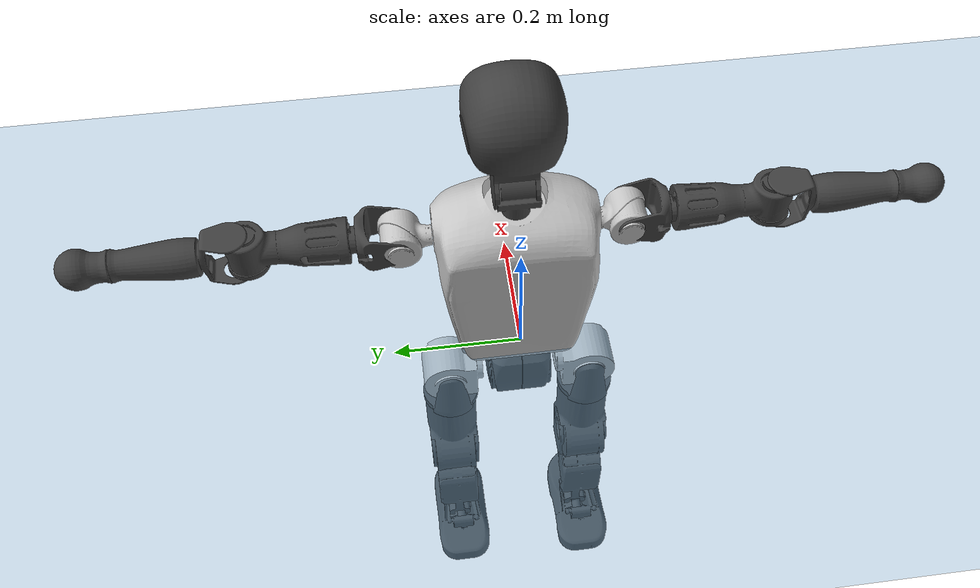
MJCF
<mujoco model="T1">
  <compiler angle="radian" assetdir="assets" balanceinertia="true" inertiafromgeom="false"/>

  <option timestep="0.005" density="1.2" viscosity="2e-05"/>

  <size nkey="1"/>

  <visual>
    <quality shadowsize="8192"/>
    <map shadowclip="0.5"/>
  </visual>

  <default>
    <default class="/">
      <joint armature="0.01" damping="0.01" frictionloss="0.1"/>
      <geom contype="0" conaffinity="0" group="1" solref="-1000 -80"/>
      <site size="0.01 0.005 0.005" group="5"/>
      <general forcelimited="true" biastype="affine" gainprm="25" biasprm="0 -25 -0.6"/>
      <default class="t1">
        <geom rgba="0.25 0.25 0.25 1"/>
        <default class="visual">
          <geom type="mesh" group="2"/>
        </default>
        <default class="collision">
          <geom group="3"/>
        </default>
        <default class="foot">
          <geom size="0.1115 0.05 0.015" type="box" condim="6" group="4" priority="1" solimp="0.015 1 0.015"/>
        </default>
        <default class="reward_collision_sphere">
          <geom group="5" rgba="1 0 0 1"/>
        </default>
      </default>
    </default>
  </default>

  <asset>
    <texture type="skybox" colorspace="auto" name="//unnamed_texture_0" builtin="gradient" rgb1="0.95 0.95 0.95" rgb2="0.95 0.95 0.95" width="100" height="600"/>
    <texture type="2d" colorspace="auto" name="texplane" builtin="checker" rgb1="0.345 0.575 0.748" rgb2="0.345 0.575 0.748" markrgb="1 1 1" width="512" height="512"/>
    <material name="MatPlane" class="/" texture="texplane" texuniform="true" texrepeat="2 2" specular="0.9"/>
    <mesh name="Trunk" class="/" file="Trunk.stl"/>
    <mesh name="H1" class="/" file="H1.stl"/>
    <mesh name="H2" class="/" file="H2.stl"/>
    <mesh name="AL1" class="/" file="AL1.stl"/>
    <mesh name="AL2" class="/" file="AL2.stl"/>
    <mesh name="AL3" class="/" file="AL3.stl"/>
    <mesh name="left_hand_link" class="/" file="left_hand_link.stl"/>
    <mesh name="AR1" class="/" file="AR1.stl"/>
    <mesh name="AR2" class="/" file="AR2.stl"/>
    <mesh name="AR3" class="/" file="AR3.stl"/>
    <mesh name="right_hand_link" class="/" file="right_hand_link.stl"/>
    <mesh name="Waist" class="/" file="Waist.stl"/>
    <mesh name="Hip_Pitch_Left" class="/" file="Hip_Pitch_Left.stl"/>
    <mesh name="Hip_Roll_Left" class="/" file="Hip_Roll_Left.stl"/>
    <mesh name="Hip_Yaw_Left" class="/" file="Hip_Yaw_Left.stl"/>
    <mesh name="Shank_Left" class="/" file="Shank_Left.stl"/>
    <mesh name="Ankle_Cross_Left" class="/" file="Ankle_Cross_Left.stl"/>
    <mesh name="left_foot_link" class="/" file="left_foot_link.stl"/>
    <mesh name="Hip_Pitch_Right" class="/" file="Hip_Pitch_Right.stl"/>
    <mesh name="Hip_Roll_Right" class="/" file="Hip_Roll_Right.stl"/>
    <mesh name="Hip_Yaw_Right" class="/" file="Hip_Yaw_Right.stl"/>
    <mesh name="Shank_Right" class="/" file="Shank_Right.stl"/>
    <mesh name="Ankle_Cross_Right" class="/" file="Ankle_Cross_Right.stl"/>
    <mesh name="right_foot_link" class="/" file="right_foot_link.stl"/>
  </asset>

  <worldbody>
    <geom name="floor" class="/" size="100 100 0.125" type="plane" group="0" material="MatPlane"/>
    <light name="toplight_shadow" class="/" pos="0 0 5" dir="0.0990148 0.0990148 -0.990148" type="directional" ambient="0.04 0.04 0.04" diffuse="0.55 0.55 0.55" specular="0.12 0.12 0.12"/>
    <light name="toplight_fill" class="/" pos="0 0 5" dir="0.0990148 0.0990148 -0.990148" type="directional" castshadow="false" ambient="0.04 0.04 0.04" diffuse="0.3 0.3 0.3" specular="0.08 0.08 0.08"/>
    <body name="trunk" childclass="t1" pos="0.000505113 0.00170649 0.00131064" quat="0.999999 0.000971262 0.000168083 0.000345234">
      <inertial pos="0.0418118 -0.000359915 0.103911" quat="0.999966 0.000858065 -0.00817884 -0.000682254" mass="10.9486" diaginertia="0.0253468 0.148614 0.0508942"/>
      <joint name="//unnamed_joint_0" type="free" armature="0" damping="0" frictionloss="0"/>
      <geom name="//unnamed_geom_1" class="visual" rgba="0.76 0.76 0.76 1" mesh="Trunk"/>
      <geom name="//unnamed_geom_2" class="collision" size="0.0723388 0.0964517 0.144678" pos="0.0465835 0 0.118278" type="box"/>
      <geom name="//unnamed_geom_3" class="reward_collision_sphere" size="0.110919" pos="0.0465835 0 0.0985648"/>
      <geom name="//unnamed_geom_4" class="reward_collision_sphere" size="0.0144678" pos="0.0465835 0.0961785 0"/>
      <geom name="//unnamed_geom_5" class="reward_collision_sphere" size="0.0144678" pos="0.0465835 -0.0961785 0"/>
      <geom name="//unnamed_geom_6" class="reward_collision_sphere" size="0.0144678" pos="0.0465835 0.121072 0.177417"/>
      <geom name="//unnamed_geom_7" class="reward_collision_sphere" size="0.0144678" pos="0.0465835 -0.121072 0.177417"/>
      <site name="imu" pos="0.00575878 -0.00317578 0.00449378" size="0.00964517"/>
      <camera name="track" pos="0 -2.26302 0" quat="0.707107 0.707107 0 0" mode="trackcom"/>
      <camera name="ego_camera" pos="0.0947198 0 0.413972" quat="-0.5 -0.5 0.5 0.5"/>
      <body name="H1" pos="0.0492254 -0.000223758 0.239812" quat="1 0.000162305 -5.41239e-05 0.000293824">
        <inertial pos="-0.000643323 0.000541878 0.0590663" quat="0.763664 -0.0127473 0.00211726 0.645485" mass="0.416718" diaginertia="7.17698e-05 0.000422947 0.000140303"/>
        <joint name="AAHead_yaw" pos="0 0 0" axis="-0.000137696 -0.00118001 0.999999" range="-1.51717 1.52026" armature="0.0098169" damping="0" frictionloss="0.109477"/>
        <geom name="//unnamed_geom_8" class="visual" mesh="H1"/>
        <body name="H2" pos="-0.00422396 0.00229988 0.0612695" quat="1 2.88963e-05 0.000116147 -0.000824648">
          <inertial pos="0.00555814 0.00245288 0.0979124" quat="0.988375 0.1067 -0.0755767 -0.077574" mass="0.57424" diaginertia="0.000559983 0.00349805 0.00158508"/>
          <joint name="Head_pitch" pos="0 0 0" axis="0.00415721 -0.999989 -0.00209554" range="-1.24385 0.325099" armature="0.00945967" damping="0" frictionloss="0.0881289"/>
          <geom name="//unnamed_geom_9" class="visual" mesh="H2"/>
          <geom name="//unnamed_geom_10" class="collision" size="0.0771614" pos="0.00776392 0 0.108421"/>
          <geom name="//unnamed_geom_11" class="reward_collision_sphere" size="0.0868066" pos="0.0155278 0 0.0985648"/>
        </body>
      </body>
      <body name="AL1" pos="0.0438055 0.122947 0.218332" quat="1 -9.69293e-05 0.000563357 -0.000597075">
        <inertial pos="0.00114978 0.0480688 -0.0028935" quat="0.501756 0.493255 -0.50669 0.498202" mass="0.463018" diaginertia="0.000388278 0.00226213 0.000263858"/>
        <joint name="Left_Shoulder_Pitch" pos="0 0 0" axis="-0.00103598 0.999994 -0.00323917" range="-3.3298 1.22628" armature="0.00963718" damping="0.0197302" frictionloss="0.0833424"/>
        <geom name="//unnamed_geom_12" class="visual" rgba="0.76 0.76 0.76 1" mesh="AL1"/>
        <body name="AL2" pos="0.0027908 0.0524528 0.00178216" quat="1 -0.000458222 4.35289e-05 -0.000408676">
          <inertial pos="0.000518638 0.0439358 0.000300107" quat="0.484818 0.502856 -0.496626 0.515219" mass="0.143077" diaginertia="0.000108263 0.000618549 0.000167416"/>
          <joint name="Left_Shoulder_Roll" pos="0 0 0" axis="-0.999975 0.000542478 0.00702264" range="-1.59205 1.69438" armature="0.0104585" damping="0.00570433" frictionloss="0.102533"/>
          <geom name="//unnamed_geom_13" class="visual" mesh="AL2"/>
          <body name="AL3" pos="0.00180546 0.0664718 -0.000605537" quat="1 0.000340183 -5.8697e-05 0.000674539">
            <inertial pos="-0.00229868 0.0966737 -0.000534939" quat="0.706374 0.707839 0.000359259 -0.00041787" mass="0.914071" diaginertia="0.003729 0.0235335 0.000557838"/>
            <joint name="Left_Elbow_Pitch" pos="0 0 0" axis="0.00364192 -0.999993 0.000575005" range="-2.23833 2.26874" armature="0.00849158" damping="0.0194736" frictionloss="0.109373"/>
            <geom name="//unnamed_geom_14" class="visual" mesh="AL3"/>
            <geom name="//unnamed_geom_15" class="collision" size="0.0289355 0.0723388" pos="0 0.0565756 0" quat="0.707105 0.707108 0 0" type="cylinder"/>
            <geom name="//unnamed_geom_16" class="reward_collision_sphere" size="0.0347226"/>
            <body name="left_hand_link" pos="-0.00142363 0.167816 -0.00201294" quat="0.999999 -0.000226685 -0.000426419 0.00129956">
              <inertial pos="-0.000406296 0.126551 0.00181628" quat="0.705801 0.708408 -0.00147914 -0.000624192" mass="0.276887" diaginertia="0.0022923 0.0149925 0.000195117"/>
              <joint name="Left_Elbow_Yaw" pos="0 0 0" axis="0.000555384 -0.000927618 0.999999" range="-2.39188 -0.0140083" armature="0.010544" damping="0.00964347" frictionloss="0.105076"/>
              <geom name="//unnamed_geom_17" class="visual" mesh="left_hand_link"/>
              <geom name="//unnamed_geom_18" class="collision" size="0.0289355 0.0843953" pos="0 0.147097 0" quat="0.707105 0.707108 0 0" type="cylinder"/>
              <geom name="//unnamed_geom_19" class="reward_collision_sphere" size="0.0482259"/>
              <geom name="//unnamed_geom_20" class="reward_collision_sphere" size="0.0337581" pos="0 0.124466 0"/>
              <geom name="//unnamed_geom_21" class="reward_collision_sphere" size="0.0337581" pos="0 0.243275 0"/>
            </body>
          </body>
        </body>
      </body>
      <body name="AR1" pos="0.045654 -0.117709 0.216226" quat="1 -3.43564e-05 0.000749243 -0.000231248">
        <inertial pos="-0.00212709 -0.0537219 0.00230049" quat="0.514673 0.490157 -0.503266 0.491508" mass="0.462903" diaginertia="0.000370594 0.00229538 0.000266096"/>
        <joint name="Right_Shoulder_Pitch" pos="0 0 0" axis="0.0191918 -0.999804 0.0047707" range="-1.22833 3.34352" armature="0.00879873" damping="0" frictionloss="0.100189"/>
        <geom name="//unnamed_geom_22" class="visual" rgba="0.76 0.76 0.76 1" mesh="AR1"/>
        <body name="AR2" pos="0.000459312 -0.049289 0.00436557" quat="1 -0.000737828 -0.00057143 -0.000108622">
          <inertial pos="7.07339e-05 -0.0431126 0.00170728" quat="0.511024 0.48501 -0.5142 0.4891" mass="0.143373" diaginertia="0.00010971 0.000625925 0.000164191"/>
          <joint name="Right_Shoulder_Roll" pos="0 0 0" axis="-0.99999 -0.00439187 -0.00101558" range="-1.68489 1.55848" armature="0.00934082" damping="0.0189554" frictionloss="0.095295"/>
          <geom name="//unnamed_geom_23" class="visual" mesh="AR2"/>
          <body name="AR3" pos="0.00299965 -0.0679943 -0.00318793" quat="0.999999 -0.00109613 0.000702382 -0.000201442">
            <inertial pos="0.00168112 -0.0973522 0.00256957" quat="0.704125 0.710068 0.00341712 0.000913172" mass="0.912945" diaginertia="0.00360185 0.0239589 0.000580051"/>
            <joint name="Right_Elbow_Pitch" pos="0 0 0" axis="-0.00413282 0.999927 -0.0113253" stiffness="0.00723596" range="-2.277 2.21744" armature="0.00926092" damping="0.0102204" frictionloss="0.0932515"/>
            <geom name="//unnamed_geom_24" class="visual" mesh="AR3"/>
            <geom name="//unnamed_geom_25" class="collision" size="0.0289355 0.0723388" pos="0 -0.0565756 0" quat="0.707105 0.707108 0 0" type="cylinder"/>
            <geom name="//unnamed_geom_26" class="reward_collision_sphere" size="0.0347226"/>
            <body name="right_hand_link" pos="-0.000308592 -0.165076 -0.0018443" quat="1 6.76192e-05 -0.000125312 -0.000137887">
              <inertial pos="-0.00115238 -0.123038 -0.00183736" quat="0.708686 0.705404 0.0127272 0.00272997" mass="0.284816" diaginertia="0.00230451 0.0141072 0.000199786"/>
              <joint name="Right_Elbow_Yaw" pos="0 0 0" axis="0.0061816 0.00470361 0.99997" range="-0.0122422 2.4387" armature="0.00839607" damping="0" frictionloss="0.0964694"/>
              <geom name="//unnamed_geom_27" class="visual" mesh="right_hand_link"/>
              <geom name="//unnamed_geom_28" class="collision" size="0.0289355 0.0843953" pos="0 -0.147097 0" quat="0.707105 0.707108 0 0" type="cylinder"/>
              <geom name="//unnamed_geom_29" class="reward_collision_sphere" size="0.0482259"/>
              <geom name="//unnamed_geom_30" class="reward_collision_sphere" size="0.0337581" pos="0 -0.124466 0"/>
              <geom name="//unnamed_geom_31" class="reward_collision_sphere" size="0.0337581" pos="0 -0.243275 0"/>
            </body>
          </body>
        </body>
      </body>
      <body name="Waist" pos="0.0471034 -0.00387386 -0.113029" quat="1 -7.23149e-05 -3.47276e-05 -8.07611e-05">
        <inertial pos="0.00481537 -0.0014695 0.0101588" quat="0.984386 -0.00106065 -0.176006 0.00242317" mass="2.38982" diaginertia="0.00151684 0.00997991 0.00441358"/>
        <joint name="Waist" pos="0 0 0" axis="0.00152079 0.0130162 0.999914" range="-1.59025 1.61922" armature="0.00917722" damping="0.0100593" frictionloss="0.0974771"/>
        <geom name="//unnamed_geom_32" class="visual" mesh="Waist"/>
        <body name="Hip_Pitch_Left" pos="0.00192946 0.117624 -0.000614112" quat="1 0.000182727 0.000277448 -0.000228837">
          <inertial pos="-0.000764053 -0.00917076 -0.0159016" quat="0.972625 0.232012 0.0119352 0.00531904" mass="0.911445" diaginertia="0.000523943 0.00271332 0.00119855"/>
          <joint name="Left_Hip_Pitch" pos="0 0 0" axis="-0.00818653 0.999966 0.000444387" range="-1.79464 1.55524" armature="0.00959479" damping="0.00312111" frictionloss="0.0960598"/>
          <geom name="//unnamed_geom_33" class="visual" rgba="0.76 0.76 0.76 1" mesh="Hip_Pitch_Left"/>
          <body name="Hip_Roll_Left" pos="0.00306169 -0.000636143 -0.0211346" quat="1 1.15459e-05 -0.000426225 -7.97891e-05">
            <inertial pos="0.00168349 -0.00207775 -0.0535478" quat="0.712247 0.00173027 -0.0134684 0.701798" mass="0.34887" diaginertia="0.00048638 0.00292931 0.000480566"/>
            <joint name="Left_Hip_Roll" pos="0 0 0" axis="-0.999938 -0.00760676 -0.00817775" stiffness="0.00303802" range="-1.54389 0.202453" armature="0.00946531" damping="0.0157149" frictionloss="0.0904045"/>
            <geom name="//unnamed_geom_34" class="visual" mesh="Hip_Roll_Left"/>
            <geom name="//unnamed_geom_35" class="reward_collision_sphere" size="0.0530484"/>
            <body name="Hip_Yaw_Left" pos="5.92127e-06 0.00144431 -0.0834747" quat="1 3.79532e-05 6.13916e-06 -4.56039e-05">
              <inertial pos="-0.00296489 -0.00113343 -0.0870715" quat="0.690237 -0.0430763 -0.0369198 0.721356" mass="1.88632" diaginertia="0.00693513 0.0479359 0.00236058"/>
              <joint name="Left_Hip_Yaw" pos="0 0 0" axis="0.0027359 0.00148978 -0.999995" stiffness="0.00917753" range="-0.9841 1.02455" armature="0.00903463" damping="0" frictionloss="0.0982676"/>
              <geom name="//unnamed_geom_36" class="visual" mesh="Hip_Yaw_Left"/>
              <geom name="//unnamed_geom_37" class="collision" size="0.0482259 0.0771614" type="cylinder"/>
              <body name="Shank_Left" pos="-0.0117819 -0.00082338 -0.132823" quat="1 0.000436016 -0.000122658 0.00077897">
                <inertial pos="-0.00194794 0.00291378 -0.125672" quat="0.997414 0.0014119 -0.0253869 0.0672285" mass="1.61897" diaginertia="0.0101402 0.0659697 0.00177221"/>
                <joint name="Left_Knee_Pitch" pos="0 0 0" axis="-0.011899 0.999861 -0.0116556" range="-0.0518414 2.33953" armature="0.0102957" damping="0" frictionloss="0.100241"/>
                <geom name="//unnamed_geom_38" class="visual" mesh="Shank_Left"/>
                <geom name="//unnamed_geom_39" class="collision" size="0.0482259 0.0723388" pos="0 0 -0.118278" type="cylinder"/>
                <geom name="//unnamed_geom_40" class="reward_collision_sphere" size="0.0626936"/>
                <body name="Ankle_Cross_Left" pos="0.00152996 -0.00291624 -0.275807" quat="1 0.000124383 -0.000254329 -6.63915e-05">
                  <inertial pos="-0.0020997 -4.7919e-05 -0.00822908" quat="0.43867 0.554344 0.547308 0.448023" mass="0.069983" diaginertia="8.1827e-06 4.86851e-05 1.08458e-05"/>
                  <joint name="Left_Ankle_Pitch" pos="0 0 0" axis="-0.00556664 0.999978 0.00360192" range="-0.87891 0.354383" armature="0.00919907" damping="0.00192015" frictionloss="0.101086"/>
                  <geom name="//unnamed_geom_41" class="visual" mesh="Ankle_Cross_Left"/>
                  <body name="left_foot_link" pos="0.000393673 -0.000867912 -0.011126" quat="1 -0.000733656 -0.00020912 -9.13067e-05">
                    <inertial pos="-0.000643591 -0.000416885 -0.0113143" quat="-0.00144819 0.62144 -0.00115428 0.78346" mass="0.580788" diaginertia="0.000724881 0.00427254 0.00190934"/>
                    <joint name="Left_Ankle_Roll" pos="0 0 0" axis="-0.999916 0.0051724 0.0118769" stiffness="0.00833676" range="-0.470962 0.492238" armature="0.00947505" damping="0" frictionloss="0.0955122"/>
                    <geom name="//unnamed_geom_42" class="visual" mesh="left_foot_link"/>
                    <geom name="left_foot" class="foot" size="0.103734 0.045844 0.0157199" pos="0.00776392 0 -0.0147847"/>
                    <geom name="//unnamed_geom_44" class="reward_collision_sphere" size="0.0501549" pos="0.00776392 0 -0.0147847"/>
                    <geom name="//unnamed_geom_45" class="reward_collision_sphere" size="0.0289355" pos="0.0737572 -0.0260248 -0.0147847"/>
                    <geom name="//unnamed_geom_46" class="reward_collision_sphere" size="0.0289355" pos="-0.0543474 -0.0260248 -0.0147847"/>
                    <site name="left_foot" class="foot" pos="0.00776392 0 -0.0147847" size="0.00964517"/>
                  </body>
                </body>
              </body>
            </body>
          </body>
        </body>
        <body name="Hip_Pitch_Right" pos="-0.00143294 -0.1189 -0.000384797" quat="1 0.000442554 0.000113408 -0.000378885">
          <inertial pos="0.000638295 0.0104487 -0.0150272" quat="0.973285 -0.229592 0.00173842 -0.00121534" mass="0.943157" diaginertia="0.000531716 0.00278262 0.00123413"/>
          <joint name="Right_Hip_Pitch" pos="0 0 0" axis="0.00078232 -0.999999 -0.00122651" range="-1.53358 1.80171" armature="0.00969731" damping="0.0189908" frictionloss="0.0885658"/>
          <geom name="//unnamed_geom_47" class="visual" rgba="0.76 0.76 0.76 1" mesh="Hip_Pitch_Right"/>
          <body name="Hip_Roll_Right" pos="0.000339107 -0.000168984 -0.0188987" quat="1 -4.43937e-05 -4.57858e-05 5.34879e-05">
            <inertial pos="-0.00153288 0.000206752 -0.050189" quat="0.70682 -0.00651213 -0.00628244 0.707336" mass="0.345627" diaginertia="0.000509786 0.00291696 0.000496168"/>
            <joint name="Right_Hip_Roll" pos="0 0 0" axis="-0.999866 0.0148634 0.00687664" range="-0.167663 1.51159" armature="0.0100899" damping="0" frictionloss="0.0979811"/>
            <geom name="//unnamed_geom_48" class="visual" mesh="Hip_Roll_Right"/>
            <geom name="//unnamed_geom_49" class="reward_collision_sphere" size="0.0530484"/>
            <body name="Hip_Yaw_Right" pos="0.000234552 0.00123535 -0.0808614" quat="1 -0.00043622 0.000389206 -0.000482916">
              <inertial pos="-0.00540487 -0.0024309 -0.0860932" quat="0.715335 -0.0331759 -0.0362882 0.69705" mass="1.9335" diaginertia="0.00742173 0.0499216 0.00239625"/>
              <joint name="Right_Hip_Yaw" pos="0 0 0" axis="0.00224285 0.017522 -0.999844" range="-0.978206 1.00279" armature="0.00970349" damping="0.00802671" frictionloss="0.097821"/>
              <geom name="//unnamed_geom_50" class="visual" mesh="Hip_Yaw_Right"/>
              <geom name="//unnamed_geom_51" class="collision" size="0.0482259 0.0771614" type="cylinder"/>
              <body name="Shank_Right" pos="-0.0127255 -0.000545381 -0.134061" quat="1 -0.000134044 -7.73622e-05 6.96365e-05">
                <inertial pos="-0.00188454 0.00279729 -0.122618" quat="0.999154 -0.00369869 -0.0181078 -0.0367471" mass="1.66849" diaginertia="0.00985159 0.066978 0.00185879"/>
                <joint name="Right_Knee_Pitch" pos="0 0 0" axis="0.00482895 -0.999988 0.000331018" stiffness="0.0100435" range="-2.35326 0.00759526" armature="0.00905829" damping="0.00654598" frictionloss="0.08977"/>
                <geom name="//unnamed_geom_52" class="visual" mesh="Shank_Right"/>
                <geom name="//unnamed_geom_53" class="collision" size="0.0482259 0.0723388" pos="0 0 -0.118278" type="cylinder"/>
                <geom name="//unnamed_geom_54" class="reward_collision_sphere" size="0.0626936"/>
                <body name="Ankle_Cross_Right" pos="-0.00191519 -0.00282515 -0.275929" quat="0.999999 -0.000664618 -0.00108713 0.000489938">
                  <inertial pos="-0.00223338 -0.00203897 -0.00807312" quat="0.451106 0.543284 0.551671 0.443852" mass="0.0617093" diaginertia="7.83957e-06 4.5362e-05 1.02709e-05"/>
                  <joint name="Right_Ankle_Pitch" pos="0 0 0" axis="-0.00613156 -0.999981 6.14142e-05" range="-0.406738 0.904357" armature="0.00886491" damping="0.0176631" frictionloss="0.0946436"/>
                  <geom name="//unnamed_geom_55" class="visual" mesh="Ankle_Cross_Right"/>
                  <body name="right_foot_link" pos="-0.00249545 -0.00293569 -0.0107806" quat="1 -0.000295874 9.54584e-05 0.000205689">
                    <inertial pos="9.2239e-05 -0.00265299 -0.0109684" quat="0.00609036 0.621429 -0.00450898 0.783434" mass="0.597712" diaginertia="0.000765584 0.00430338 0.0019578"/>
                    <joint name="Right_Ankle_Roll" pos="0 0 0" axis="-1 -5.76277e-06 -0.000115906" range="-0.491673 0.424098" armature="0.010231" damping="0" frictionloss="0.0831319"/>
                    <geom name="//unnamed_geom_56" class="visual" mesh="right_foot_link"/>
                    <geom name="right_foot" class="foot" size="0.100468 0.0511615 0.0131483" pos="0.00776392 0 -0.0147847"/>
                    <geom name="//unnamed_geom_58" class="reward_collision_sphere" size="0.0385807"/>
                    <geom name="//unnamed_geom_59" class="reward_collision_sphere" size="0.0289355" pos="0.00776392 0 -0.0147847"/>
                    <geom name="//unnamed_geom_60" class="reward_collision_sphere" size="0.0289355" pos="0.0737572 0.0260248 -0.0147847"/>
                    <geom name="//unnamed_geom_61" class="reward_collision_sphere" size="0.0289355" pos="-0.0543474 0.0260248 -0.0147847"/>
                    <site name="right_foot" class="foot" pos="0.00776392 0 -0.0147847" size="0.00964517"/>
                  </body>
                </body>
              </body>
            </body>
          </body>
        </body>
      </body>
    </body>
  </worldbody>

  <contact>
    <pair class="/" geom1="floor" geom2="left_foot" name="//unnamed_contact_0"/>
    <pair class="/" geom1="floor" geom2="right_foot" name="//unnamed_contact_1"/>
  </contact>

  <actuator>
    <general name="AAHead_yaw" class="/" joint="AAHead_yaw" forcerange="-6.60171 6.60171" gainprm="24.4897" biasprm="0 -24.4897 -0.554834"/>
    <general name="Head_pitch" class="/" joint="Head_pitch" forcerange="-7.40647 7.40647" gainprm="24.4897" biasprm="0 -24.4897 -0.554834"/>
    <general name="Left_Shoulder_Pitch" class="/" joint="Left_Shoulder_Pitch" forcerange="-15.5555 15.5555" gainprm="24.4897" biasprm="0 -24.4897 -0.554834"/>
    <general name="Left_Shoulder_Roll" class="/" joint="Left_Shoulder_Roll" forcerange="-18.8301 18.8301" gainprm="24.4897" biasprm="0 -24.4897 -0.554834"/>
    <general name="Left_Elbow_Pitch" class="/" joint="Left_Elbow_Pitch" forcerange="-17.4893 17.4893" gainprm="24.4897" biasprm="0 -24.4897 -0.554834"/>
    <general name="Left_Elbow_Yaw" class="/" joint="Left_Elbow_Yaw" forcerange="-17.3246 17.3246" gainprm="24.4897" biasprm="0 -24.4897 -0.554834"/>
    <general name="Right_Shoulder_Pitch" class="/" joint="Right_Shoulder_Pitch" forcerange="-19.0765 19.0765" gainprm="24.4897" biasprm="0 -24.4897 -0.554834"/>
    <general name="Right_Shoulder_Roll" class="/" joint="Right_Shoulder_Roll" forcerange="-18.6743 18.6743" gainprm="24.4897" biasprm="0 -24.4897 -0.554834"/>
    <general name="Right_Elbow_Pitch" class="/" joint="Right_Elbow_Pitch" forcerange="-17.6438 17.6438" gainprm="24.4897" biasprm="0 -24.4897 -0.554834"/>
    <general name="Right_Elbow_Yaw" class="/" joint="Right_Elbow_Yaw" forcerange="-17.0025 17.0025" gainprm="24.4897" biasprm="0 -24.4897 -0.554834"/>
    <general name="Waist" class="/" joint="Waist" forcerange="-29.7721 29.7721" gainprm="24.4897" biasprm="0 -24.4897 -0.554834"/>
    <general name="Left_Hip_Pitch" class="/" joint="Left_Hip_Pitch" forcerange="-42.2801 42.2801" gainprm="24.4897" biasprm="0 -24.4897 -0.554834"/>
    <general name="Left_Hip_Roll" class="/" joint="Left_Hip_Roll" forcerange="-27.1431 27.1431" gainprm="24.4897" biasprm="0 -24.4897 -0.554834"/>
    <general name="Left_Hip_Yaw" class="/" joint="Left_Hip_Yaw" forcerange="-26.9442 26.9442" gainprm="24.4897" biasprm="0 -24.4897 -0.554834"/>
    <general name="Left_Knee_Pitch" class="/" joint="Left_Knee_Pitch" forcerange="-55.0762 55.0762" gainprm="24.4897" biasprm="0 -24.4897 -0.554834"/>
    <general name="Left_Ankle_Pitch" class="/" joint="Left_Ankle_Pitch" forcerange="-17.858 17.858" gainprm="24.4897" biasprm="0 -24.4897 -0.554834"/>
    <general name="Left_Ankle_Roll" class="/" joint="Left_Ankle_Roll" forcerange="-13.2528 13.2528" gainprm="24.4897" biasprm="0 -24.4897 -0.554834"/>
    <general name="Right_Hip_Pitch" class="/" joint="Right_Hip_Pitch" forcerange="-44.0688 44.0688" gainprm="24.4897" biasprm="0 -24.4897 -0.554834"/>
    <general name="Right_Hip_Roll" class="/" joint="Right_Hip_Roll" forcerange="-27.8421 27.8421" gainprm="24.4897" biasprm="0 -24.4897 -0.554834"/>
    <general name="Right_Hip_Yaw" class="/" joint="Right_Hip_Yaw" forcerange="-30.9111 30.9111" gainprm="24.4897" biasprm="0 -24.4897 -0.554834"/>
    <general name="Right_Knee_Pitch" class="/" joint="Right_Knee_Pitch" forcerange="-56.56 56.56" gainprm="24.4897" biasprm="0 -24.4897 -0.554834"/>
    <general name="Right_Ankle_Pitch" class="/" joint="Right_Ankle_Pitch" forcerange="-19.2395 19.2395" gainprm="24.4897" biasprm="0 -24.4897 -0.554834"/>
    <general name="Right_Ankle_Roll" class="/" joint="Right_Ankle_Roll" forcerange="-14.4822 14.4822" gainprm="24.4897" biasprm="0 -24.4897 -0.554834"/>
  </actuator>

  <sensor>
    <gyro site="imu" name="imu_angular_velocity"/>
    <velocimeter site="imu" name="imu_linear_velocity"/>
    <framelinvel objtype="site" objname="left_foot" name="left_foot_global_linear_velocity"/>
    <framelinvel objtype="site" objname="right_foot" name="right_foot_global_linear_velocity"/>
  </sensor>

  <keyframe>
    <key name="home" qpos="0 0 0.6385 1 0 0 0 0 0 0 1.4 0 -0.4 0 -1.4 0 0.4 0 -0.4 0 0 0.8 -0.4 0 0.4 0 0 -0.8 0.4 0"/>
  </keyframe>
</mujoco>
